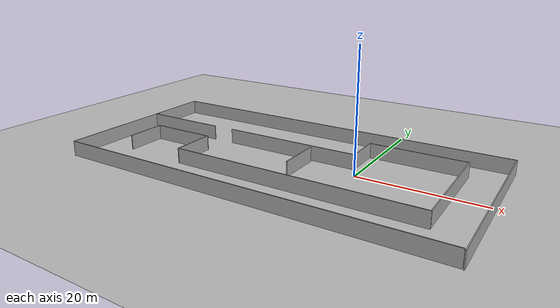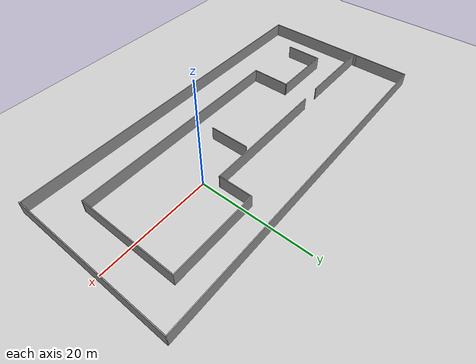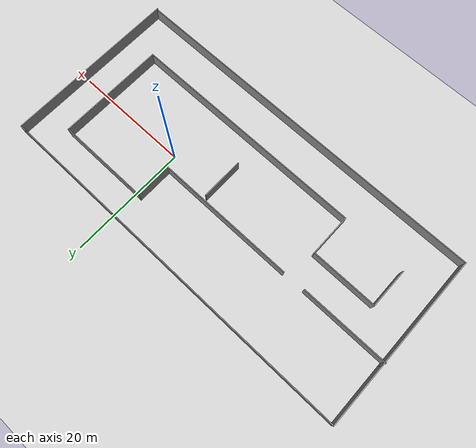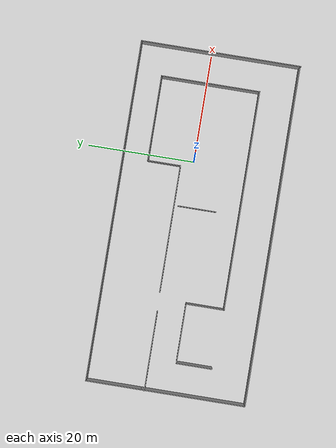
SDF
<sdf version="1.7">
 <world name="default">
  <light name="sun" type="directional">
   <pose>0 0 10 0 -0 0</pose>
   <diffuse>0.8 0.8 0.8 1</diffuse>
   <specular>0.2 0.2 0.2 1</specular>
   <attenuation>
    <range>1000</range>
    <constant>0.9</constant>
    <linear>0.01</linear>
    <quadratic>0.001</quadratic>
   </attenuation>
   <direction>-0.5 0.1 -0.9</direction>
   <spot><inner_angle>0</inner_angle><outer_angle>0</outer_angle><falloff>0</falloff></spot>
  </light>
  <model name="ground_plane">
   <static>1</static>
   <link name="link">
    <collision name="collision">
     <geometry><plane><normal>0 0 1</normal><size>100 100</size></plane></geometry>
     <surface>
      <contact><collide_bitmask>65535</collide_bitmask></contact>
      <friction><ode><mu>100</mu><mu2>50</mu2></ode></friction>
     </surface>
    </collision>
    <visual name="visual">
     <cast_shadows>0</cast_shadows>
     <geometry><plane><normal>0 0 1</normal><size>100 100</size></plane></geometry>
     <material>
      <script><uri>file://media/materials/scripts/gazebo.material</uri><name>Gazebo/Grey</name></script>
     </material>
    </visual>
   </link>
  </model>
  <gravity>0 0 -9.8</gravity>
  <magnetic_field>6e-06 2.3e-05 -4.2e-05</magnetic_field>
  <atmosphere type="adiabatic"/>
  <physics type="ode">
   <max_step_size>0.001</max_step_size>
   <real_time_factor>1</real_time_factor>
   <real_time_update_rate>1000</real_time_update_rate>
  </physics>
  <scene><ambient>0.4 0.4 0.4 1</ambient><background>0.7 0.7 0.7 1</background><shadows>1</shadows></scene>
  <spherical_coordinates>
   <surface_model>EARTH_WGS84</surface_model>
   <latitude_deg>0</latitude_deg>
   <longitude_deg>0</longitude_deg>
   <elevation>0</elevation>
   <heading_deg>0</heading_deg>
  </spherical_coordinates>
  <model name="maze">
   <pose>-11.3976 -1.71465 0 0 -0 0</pose>
   <link name="Wall_11">
    <collision name="Wall_11_Collision">
     <geometry><box><size>14.75 0.15 2.5</size></box></geometry>
     <pose>0 0 1.25 0 -0 0</pose>
    </collision>
    <visual name="Wall_11_Visual">
     <pose>0 0 1.25 0 -0 0</pose>
     <geometry><box><size>14.75 0.15 2.5</size></box></geometry>
     <material>
      <script><uri>file://media/materials/scripts/gazebo.material</uri><name>Gazebo/Grey</name></script>
      <ambient>1 1 1 1</ambient>
     </material>
     <meta><layer>0</layer></meta>
    </visual>
    <pose>-24.5556 3.99311 0 0 -0 0</pose>
   </link>
   <link name="Wall_13">
    <collision name="Wall_13_Collision">
     <geometry><box><size>23.75 0.15 2.5</size></box></geometry>
     <pose>0 0 1.25 0 -0 0</pose>
    </collision>
    <visual name="Wall_13_Visual">
     <pose>0 0 1.25 0 -0 0</pose>
     <geometry><box><size>23.75 0.15 2.5</size></box></geometry>
     <material>
      <script><uri>file://media/materials/scripts/gazebo.material</uri><name>Gazebo/Grey</name></script>
      <ambient>1 1 1 1</ambient>
     </material>
     <meta><layer>0</layer></meta>
    </visual>
    <pose>-1.61618 4.11687 0 0 -0 0</pose>
   </link>
   <link name="Wall_14">
    <collision name="Wall_14_Collision">
     <geometry><box><size>6.25 0.15 2.5</size></box></geometry>
     <pose>0 0 1.25 0 -0 0</pose>
    </collision>
    <visual name="Wall_14_Visual">
     <pose>0 0 1.25 0 -0 0</pose>
     <geometry><box><size>6.25 0.15 2.5</size></box></geometry>
     <material>
      <script><uri>file://media/materials/scripts/gazebo.material</uri><name>Gazebo/Grey</name></script>
      <ambient>1 1 1 1</ambient>
     </material>
     <meta><layer>0</layer></meta>
    </visual>
    <pose>10.1838 7.16687 0 0 -0 1.5708</pose>
   </link>
   <link name="Wall_15">
    <collision name="Wall_15_Collision">
     <geometry><box><size>16 0.15 2.5</size></box></geometry>
     <pose>0 0 1.25 0 -0 0</pose>
    </collision>
    <visual name="Wall_15_Visual">
     <pose>0 0 1.25 0 -0 0</pose>
     <geometry><box><size>16 0.15 2.5</size></box></geometry>
     <material>
      <script><uri>file://media/materials/scripts/gazebo.material</uri><name>Gazebo/Grey</name></script>
      <ambient>1 1 1 1</ambient>
     </material>
     <meta><layer>0</layer></meta>
    </visual>
    <pose>18.1088 10.2169 0 0 -0 0</pose>
   </link>
   <link name="Wall_16">
    <collision name="Wall_16_Collision">
     <geometry><box><size>18.5 0.15 2.5</size></box></geometry>
     <pose>0 0 1.25 0 -0 0</pose>
    </collision>
    <visual name="Wall_16_Visual">
     <pose>0 0 1.25 0 -0 0</pose>
     <geometry><box><size>18.5 0.15 2.5</size></box></geometry>
     <material>
      <script><uri>file://media/materials/scripts/gazebo.material</uri><name>Gazebo/Grey</name></script>
      <ambient>1 1 1 1</ambient>
     </material>
     <meta><layer>0</layer></meta>
    </visual>
    <pose>26.0338 1.04187 0 0 -0 -1.5708</pose>
   </link>
   <link name="Wall_17">
    <collision name="Wall_17_Collision">
     <geometry><box><size>41 0.15 2.5</size></box></geometry>
     <pose>0 0 1.25 0 -0 0</pose>
    </collision>
    <visual name="Wall_17_Visual">
     <pose>0 0 1.25 0 -0 0</pose>
     <geometry><box><size>41 0.15 2.5</size></box></geometry>
     <material>
      <script><uri>file://media/materials/scripts/gazebo.material</uri><name>Gazebo/Grey</name></script>
      <ambient>1 1 1 1</ambient>
     </material>
     <meta><layer>0</layer></meta>
    </visual>
    <pose>5.60882 -8.13313 0 0 -0 3.14159</pose>
   </link>
   <link name="Wall_18">
    <collision name="Wall_18_Collision">
     <geometry><box><size>7.25 0.15 2.5</size></box></geometry>
     <pose>0 0 1.25 0 -0 0</pose>
    </collision>
    <visual name="Wall_18_Visual">
     <pose>0 0 1.25 0 -0 0</pose>
     <geometry><box><size>7.25 0.15 2.5</size></box></geometry>
     <material>
      <script><uri>file://media/materials/scripts/gazebo.material</uri><name>Gazebo/Grey</name></script>
      <ambient>1 1 1 1</ambient>
     </material>
     <meta><layer>0</layer></meta>
    </visual>
    <pose>-14.8162 -4.58313 0 0 -0 1.5708</pose>
   </link>
   <link name="Wall_19">
    <collision name="Wall_19_Collision">
     <geometry><box><size>11.25 0.15 2.5</size></box></geometry>
     <pose>0 0 1.25 0 -0 0</pose>
    </collision>
    <visual name="Wall_19_Visual">
     <pose>0 0 1.25 0 -0 0</pose>
     <geometry><box><size>11.25 0.15 2.5</size></box></geometry>
     <material>
      <script><uri>file://media/materials/scripts/gazebo.material</uri><name>Gazebo/Grey</name></script>
      <ambient>1 1 1 1</ambient>
     </material>
     <meta><layer>0</layer></meta>
    </visual>
    <pose>-20.3662 -1.03313 0 0 -0 3.14159</pose>
   </link>
   <link name="Wall_20">
    <collision name="Wall_20_Collision">
     <geometry><box><size>6.75 0.15 2.5</size></box></geometry>
     <pose>0 0 1.25 0 -0 0</pose>
    </collision>
    <visual name="Wall_20_Visual">
     <pose>0 0 1.25 0 -0 0</pose>
     <geometry><box><size>6.75 0.15 2.5</size></box></geometry>
     <material>
      <script><uri>file://media/materials/scripts/gazebo.material</uri><name>Gazebo/Grey</name></script>
      <ambient>1 1 1 1</ambient>
     </material>
     <meta><layer>0</layer></meta>
    </visual>
    <pose>-25.9162 -4.33313 0 0 -0 -1.5708</pose>
   </link>
   <link name="Wall_23">
    <collision name="Wall_23_Collision">
     <geometry><box><size>7.25 0.15 2.5</size></box></geometry>
     <pose>0 0 1.25 0 -0 0</pose>
    </collision>
    <visual name="Wall_23_Visual">
     <pose>0 0 1.25 0 -0 0</pose>
     <geometry><box><size>7.25 0.15 2.5</size></box></geometry>
     <material>
      <script><uri>file://media/materials/scripts/gazebo.material</uri><name>Gazebo/Grey</name></script>
      <ambient>1 1 1 1</ambient>
     </material>
     <meta><layer>0</layer></meta>
    </visual>
    <pose>2.79567 -0.175657 0 0 -0 -1.5708</pose>
   </link>
   <link name="Wall_4">
    <collision name="Wall_4_Collision">
     <geometry><box><size>19.5 0.15 2.5</size></box></geometry>
     <pose>0 0 1.25 0 -0 0</pose>
    </collision>
    <visual name="Wall_4_Visual">
     <pose>0 0 1.25 0 -0 0</pose>
     <geometry><box><size>19.5 0.15 2.5</size></box></geometry>
     <material>
      <script><uri>file://media/materials/scripts/gazebo.material</uri><name>Gazebo/Grey</name></script>
      <ambient>1 1 1 1</ambient>
     </material>
     <meta><layer>0</layer></meta>
    </visual>
    <pose>-31.7444 -5.1 0 0 -0 -1.5708</pose>
   </link>
   <link name="Wall_5">
    <collision name="Wall_5_Collision">
     <geometry><box><size>63.5 0.15 2.5</size></box></geometry>
     <pose>0 0 1.25 0 -0 0</pose>
    </collision>
    <visual name="Wall_5_Visual">
     <pose>0 0 1.25 0 -0 0</pose>
     <geometry><box><size>63.5 0.15 2.5</size></box></geometry>
     <material>
      <script><uri>file://media/materials/scripts/gazebo.material</uri><name>Gazebo/Grey</name></script>
      <ambient>1 1 1 1</ambient>
     </material>
     <meta><layer>0</layer></meta>
    </visual>
    <pose>-0.069397 -14.775 0 0 -0 0</pose>
   </link>
   <link name="Wall_7">
    <collision name="Wall_7_Collision">
     <geometry><box><size>10.5 0.15 2.5</size></box></geometry>
     <pose>0 0 1.25 0 -0 0</pose>
    </collision>
    <visual name="Wall_7_Visual">
     <pose>0 0 1.25 0 -0 0</pose>
     <geometry><box><size>10.5 0.15 2.5</size></box></geometry>
     <material>
      <script><uri>file://media/materials/scripts/gazebo.material</uri><name>Gazebo/Grey</name></script>
      <ambient>1 1 1 1</ambient>
     </material>
     <meta><layer>0</layer></meta>
    </visual>
    <pose>-31.7444 9.75 0 0 -0 1.5708</pose>
   </link>
   <link name="Wall_8">
    <collision name="Wall_8_Collision">
     <geometry><box><size>63.75 0.15 2.5</size></box></geometry>
     <pose>0 0 1.25 0 -0 0</pose>
    </collision>
    <visual name="Wall_8_Visual">
     <pose>0 0 1.25 0 -0 0</pose>
     <geometry><box><size>63.75 0.15 2.5</size></box></geometry>
     <material>
      <script><uri>file://media/materials/scripts/gazebo.material</uri><name>Gazebo/Grey</name></script>
      <ambient>1 1 1 1</ambient>
     </material>
     <meta><layer>0</layer></meta>
    </visual>
    <pose>0.055603 14.925 0 0 -0 0</pose>
   </link>
   <link name="Wall_9">
    <collision name="Wall_9_Collision">
     <geometry><box><size>30 0.15 2.5</size></box></geometry>
     <pose>0 0 1.25 0 -0 0</pose>
    </collision>
    <visual name="Wall_9_Visual">
     <pose>0 0 1.25 0 -0 0</pose>
     <geometry><box><size>30 0.15 2.5</size></box></geometry>
     <material>
      <script><uri>file://media/materials/scripts/gazebo.material</uri><name>Gazebo/Grey</name></script>
      <ambient>1 1 1 1</ambient>
     </material>
     <meta><layer>0</layer></meta>
    </visual>
    <pose>31.8556 0 0 0 -0 -1.5708</pose>
   </link>
   <static>1</static>
  </model>
 </world>
</sdf>
